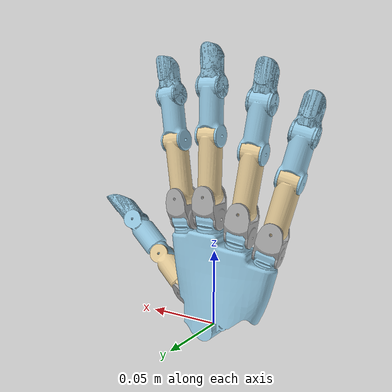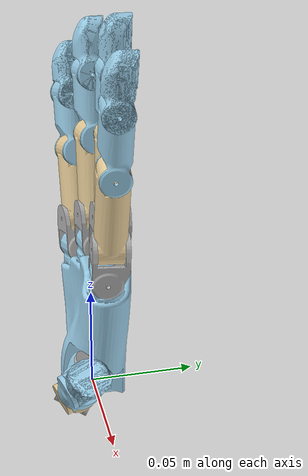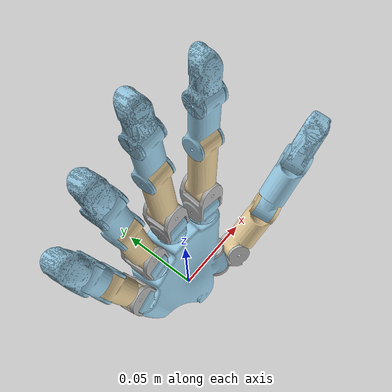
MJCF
<mujoco model="wujihand-right">
  <compiler angle="radian" meshdir="../meshes/right/" />

  <option jacobian="sparse" integrator="RK4" timestep="0.002" solver="Newton" iterations="50" tolerance="1e-10" /><default><joint armature="0.0002" damping="0.0" /></default><asset>
    <mesh name="r_wrist" content_type="model/stl" file="r_wrist.STL" />
    <mesh name="r_thumb_proximal" content_type="model/stl" file="r_thumb_proximal.STL" />
    <mesh name="r_thumb_proximal_abd" content_type="model/stl" file="r_thumb_proximal_abd.STL" />
    <mesh name="r_thumb_middle" content_type="model/stl" file="r_thumb_middle.STL" />
    <mesh name="r_thumb_distal" content_type="model/stl" file="r_thumb_distal.STL" />
    <mesh name="r_thumb_tip" content_type="model/stl" file="r_thumb_tip.STL" />
    <mesh name="r_index_finger_proximal" content_type="model/stl" file="r_index_finger_proximal.STL" />
    <mesh name="r_index_finger_proximal_abd" content_type="model/stl" file="r_index_finger_proximal_abd.STL" />
    <mesh name="r_index_finger_middle" content_type="model/stl" file="r_index_finger_middle.STL" />
    <mesh name="r_index_finger_distal" content_type="model/stl" file="r_index_finger_distal.STL" />
    <mesh name="r_index_finger_tip" content_type="model/stl" file="r_index_finger_tip.STL" />
    <mesh name="r_middle_finger_proximal" content_type="model/stl" file="r_middle_finger_proximal.STL" />
    <mesh name="r_middle_finger_proximal_abd" content_type="model/stl" file="r_middle_finger_proximal_abd.STL" />
    <mesh name="r_middle_finger_middle" content_type="model/stl" file="r_middle_finger_middle.STL" />
    <mesh name="r_middle_finger_distal" content_type="model/stl" file="r_middle_finger_distal.STL" />
    <mesh name="r_middle_finger_tip" content_type="model/stl" file="r_middle_finger_tip.STL" />
    <mesh name="r_ring_finger_proximal" content_type="model/stl" file="r_ring_finger_proximal.STL" />
    <mesh name="r_ring_finger_proximal_abd" content_type="model/stl" file="r_ring_finger_proximal_abd.STL" />
    <mesh name="r_ring_finger_middle" content_type="model/stl" file="r_ring_finger_middle.STL" />
    <mesh name="r_ring_finger_distal" content_type="model/stl" file="r_ring_finger_distal.STL" />
    <mesh name="r_ring_finger_tip" content_type="model/stl" file="r_ring_finger_tip.STL" />
    <mesh name="r_pinky_proximal" content_type="model/stl" file="r_pinky_proximal.STL" />
    <mesh name="r_pinky_proximal_abd" content_type="model/stl" file="r_pinky_proximal_abd.STL" />
    <mesh name="r_pinky_middle" content_type="model/stl" file="r_pinky_middle.STL" />
    <mesh name="r_pinky_distal" content_type="model/stl" file="r_pinky_distal.STL" />
    <mesh name="r_pinky_tip" content_type="model/stl" file="r_pinky_tip.STL" />
  </asset>

  <worldbody>
    <body name="r_base"><inertial pos="-0.00465005915391 0.00350274933556 0.0355133231883" mass="0.16914" quat="-0.02356349 0.71387536 0.69423322 -0.08869587" diaginertia="1.13579761e-04 7.26782042e-05 5.63605819e-05" /><geom quat="0 1 0 0" type="mesh" contype="0" conaffinity="0" group="1" density="0" rgba="0.6 0.8 0.9 1" mesh="r_wrist" />
    <geom quat="0 1 0 0" type="mesh" rgba="0.6 0.8 0.9 1" mesh="r_wrist" contype="1" conaffinity="1" />
    <body name="r_thumb_proximal" pos="0.0166603 -0.00812975 0.0170174" quat="0.0560941 0.641145 -0.286764 -0.709615">
      <inertial pos="0.000853657 -0.00195618 -0.00731809" quat="0.926535 0.017864 -0.0783162 -0.367534" mass="0.0075" diaginertia="5.71809e-07 5.3253e-07 4.31645e-07" />
      <joint name="r_thumb_cmc_flex" pos="0 0 0" axis="1 0 0" range="-1.187 1.291" actuatorfrcrange="-0.6 0.6" armature="0.0005" />
      <geom type="mesh" contype="0" conaffinity="0" group="1" density="0" rgba="0.7 0.7 0.7 1" mesh="r_thumb_proximal" />
      <geom type="mesh" rgba="0.7 0.7 0.7 1" mesh="r_thumb_proximal" contype="0" conaffinity="0" />
      <body name="r_thumb_proximal_abd" pos="0.000247879 -0.00053658 -0.0147535" quat="0.934711 0.0919299 0.342518 -0.0233669">
        <inertial pos="1.27934e-05 6.47331e-06 -0.0130544" quat="0.514054 -0.00124335 -0.00239204 0.857754" mass="0.0248" diaginertia="3.12125e-06 3.01494e-06 9.11991e-07" />
        <joint name="r_thumb_cmc_abd" pos="0 0 0" axis="0 1 0" range="-1.484 0.698" actuatorfrcrange="-0.6 0.6" armature="0.0005" />
        <geom type="mesh" contype="0" conaffinity="0" group="1" density="0" rgba="0.9 0.8 0.6 1" mesh="r_thumb_proximal_abd" />
        <geom type="mesh" rgba="0.9 0.8 0.6 1" mesh="r_thumb_proximal_abd" contype="2" conaffinity="2" />
        <body name="r_thumb_middle" pos="0 0 -0.0325" quat="0.957006 -0.0650473 0.0264059 0.281446">
          <inertial pos="9.38762e-06 0.00159564 -0.0142966" quat="0.697249 0.0378208 -0.040338 0.714693" mass="0.0165" diaginertia="2.27227e-06 2.22634e-06 6.14235e-07" />
          <joint name="r_thumb_mcp" pos="0 0 0" axis="1 0 0" range="-1.047 1.57" actuatorfrcrange="-0.3 0.3" />
          <geom type="mesh" contype="0" conaffinity="0" group="1" density="0" rgba="0.6 0.8 0.9 1" mesh="r_thumb_middle" />
          <geom type="mesh" rgba="0.6 0.8 0.9 1" mesh="r_thumb_middle" contype="1" conaffinity="1" />
          <body name="r_thumb_distal" pos="-5e-05 0.00385197 -0.0347874" quat="0.99848 0.0551119 0 0">
            <inertial pos="0.00011198 -0.0010295 -0.0108652" quat="0.983263 -0.0496604 0.00876169 0.175074" mass="0.0206" diaginertia="2.18898e-06 2.17637e-06 5.55099e-07" />
            <joint name="r_thumb_ip" pos="0 0 0" axis="1 0 0" range="-1.047 1.57" actuatorfrcrange="-0.3 0.3" />
            <geom type="mesh" contype="0" conaffinity="0" group="1" density="0" rgba="0.6 0.8 0.9 1" mesh="r_thumb_distal" />
            <geom type="mesh" rgba="0.6 0.8 0.9 1" mesh="r_thumb_distal" contype="1" conaffinity="1" />
            <geom pos="0 -0.000557449 -0.0276973" quat="1 0 0 0" type="mesh" contype="0" conaffinity="0" group="1" density="0" rgba="0.6 0.8 0.9 1" mesh="r_thumb_tip" />
            <geom pos="0 -0.000557449 -0.0276973" quat="1 0 0 0" type="mesh" rgba="0.6 0.8 0.9 1" mesh="r_thumb_tip" contype="1" conaffinity="1" />
          </body>
        </body>
      </body>
    </body>
    <body name="r_index_finger_proximal" pos="0.0203529 0.00336012 0.0706794" quat="0.00260714 0.997389 -0.0496759 -0.0523459">
      <inertial pos="1.80648e-09 -0.00198236 -0.00755147" quat="0.998683 -0.0513126 0 0" mass="0.0032" diaginertia="2.53706e-07 2.50651e-07 2.17493e-07" />
      <joint name="r_index_finger_mcp_flex" pos="0 0 0" axis="1 0 0" range="-1.047 1.57" actuatorfrcrange="-2 2" armature="0.0005" />
      <geom type="mesh" contype="0" conaffinity="0" group="1" density="0" rgba="0.7 0.7 0.7 1" mesh="r_index_finger_proximal" />
      <geom type="mesh" rgba="0.7 0.7 0.7 1" mesh="r_index_finger_proximal" contype="0" conaffinity="0" />
      <body name="r_index_finger_proximal_abd" pos="0 -0.00158514 -0.014463" quat="0.999912 -0.0132627 0 0">
        <inertial pos="8.04733e-08 7.30404e-07 -0.0187994" quat="0.983237 -1.60594e-05 3.84548e-06 0.18233" mass="0.033" diaginertia="6.82962e-06 6.82929e-06 8.90202e-07" />
        <joint name="r_index_finger_mcp_abd" pos="0 0 0" axis="0 1 0" range="-0.698 0.698" actuatorfrcrange="-0.2 0.2" />
        <geom type="mesh" contype="0" conaffinity="0" group="1" density="0" rgba="0.9 0.8 0.6 1" mesh="r_index_finger_proximal_abd" />
        <geom type="mesh" rgba="0.9 0.8 0.6 1" mesh="r_index_finger_proximal_abd" contype="2" conaffinity="2" />
        <body name="r_index_finger_middle" pos="0 0 -0.0376">
          <inertial pos="-5.07335e-08 -0.000247887 -0.0190348" quat="0.707235 0.0108069 -0.0107958 0.706814" mass="0.0165" diaginertia="1.92861e-06 1.87201e-06 5.07825e-07" />
          <joint name="r_index_finger_pip" pos="0 0 0" axis="1 0 0" range="-1.047 2.094" actuatorfrcrange="-0.3 0.3" />
          <geom type="mesh" contype="0" conaffinity="0" group="1" density="0" rgba="0.6 0.8 0.9 1" mesh="r_index_finger_middle" />
          <geom type="mesh" rgba="0.6 0.8 0.9 1" mesh="r_index_finger_middle" contype="1" conaffinity="1" />
          <body name="r_index_finger_distal" pos="0 0 -0.0295">
            <inertial pos="0.000309785 -0.00180539 -0.0114392" quat="0.719554 -0.0750724 0.0644902 0.687348" mass="0.01718" diaginertia="1.37358e-06 1.26339e-06 5.15141e-07" />
            <joint name="r_index_finger_dip" pos="0 0 0" axis="1 0 0" range="-1.047 1.57" actuatorfrcrange="-0.3 0.3" />
            <geom type="mesh" contype="0" conaffinity="0" group="1" density="0" rgba="0.6 0.8 0.9 1" mesh="r_index_finger_distal" />
            <geom type="mesh" rgba="0.6 0.8 0.9 1" mesh="r_index_finger_distal" contype="1" conaffinity="1" />
            <geom pos="0 -0.0016722 -0.025" quat="1 0 0 0" type="mesh" contype="0" conaffinity="0" group="1" density="0" rgba="0.6 0.8 0.9 1" mesh="r_index_finger_tip" />
            <geom pos="0 -0.0016722 -0.025" quat="1 0 0 0" type="mesh" rgba="0.6 0.8 0.9 1" mesh="r_index_finger_tip" contype="1" conaffinity="1" />
          </body>
        </body>
      </body>
    </body>
    <body name="r_middle_finger_proximal" pos="-0.00147348 0.00833994 0.0739026" quat="0.0172035 0.999612 -1.68266e-05 0.0219273">
      <inertial pos="1.83179e-09 -0.00178137 -0.00760139" quat="0.999275 -0.0380628 0 0" mass="0.0032" diaginertia="2.53706e-07 2.50651e-07 2.17493e-07" />
      <joint name="r_middle_finger_mcp_flex" pos="0 0 0" axis="1 0 0" range="-1.047 1.57" actuatorfrcrange="-2 2" armature="0.0005" />
      <geom type="mesh" contype="0" conaffinity="0" group="1" density="0" rgba="0.7 0.7 0.7 1" mesh="r_middle_finger_proximal" />
      <geom type="mesh" rgba="0.7 0.7 0.7 1" mesh="r_middle_finger_proximal" contype="0" conaffinity="0" />
      <body name="r_middle_finger_proximal_abd" pos="0 -0.00120098 -0.0145">
        <inertial pos="8.04733e-08 7.30404e-07 -0.0187994" quat="0.983237 -1.60594e-05 3.84548e-06 0.18233" mass="0.033" diaginertia="6.82962e-06 6.82929e-06 8.90202e-07" />
        <joint name="r_middle_finger_mcp_abd" pos="0 0 0" axis="0 1 0" range="-0.698 0.698" actuatorfrcrange="-0.2 0.2" />
        <geom type="mesh" contype="0" conaffinity="0" group="1" density="0" rgba="0.9 0.8 0.6 1" mesh="r_middle_finger_proximal_abd" />
        <geom type="mesh" rgba="0.9 0.8 0.6 1" mesh="r_middle_finger_proximal_abd" contype="2" conaffinity="2" />
        <body name="r_middle_finger_middle" pos="0 0 -0.0376">
          <inertial pos="-5.07335e-08 -0.000247887 -0.0190348" quat="0.707235 0.0108069 -0.0107958 0.706814" mass="0.0165" diaginertia="1.92861e-06 1.87201e-06 5.07825e-07" />
          <joint name="r_middle_finger_pip" pos="0 0 0" axis="1 0 0" range="-1.047 2.094" actuatorfrcrange="-0.3 0.3" />
          <geom type="mesh" contype="0" conaffinity="0" group="1" density="0" rgba="0.6 0.8 0.9 1" mesh="r_middle_finger_middle" />
          <geom type="mesh" rgba="0.6 0.8 0.9 1" mesh="r_middle_finger_middle" contype="1" conaffinity="1" />
          <body name="r_middle_finger_distal" pos="0 0 -0.0295" quat="0.999852 0.0171998 0 0">
            <inertial pos="0.000468757 -0.00226008 -0.0112071" quat="0.708852 -0.0912611 0.0741461 0.695487" mass="0.01718" diaginertia="1.42795e-06 1.2904e-06 5.05945e-07" />
            <joint name="r_middle_finger_dip" pos="0 0 0" axis="1 0 0" range="-1.047 1.57" actuatorfrcrange="-0.3 0.3" />
            <geom type="mesh" contype="0" conaffinity="0" group="1" density="0" rgba="0.6 0.8 0.9 1" mesh="r_middle_finger_distal" />
            <geom type="mesh" rgba="0.6 0.8 0.9 1" mesh="r_middle_finger_distal" contype="1" conaffinity="1" />
            <geom pos="0 -0.00253107 -0.0249277" quat="0.999852 -0.0171998 0 0" type="mesh" contype="0" conaffinity="0" group="1" density="0" rgba="0.6 0.8 0.9 1" mesh="r_middle_finger_tip" />
            <geom pos="0 -0.00253107 -0.0249277" quat="0.999852 -0.0171998 0 0" type="mesh" rgba="0.6 0.8 0.9 1" mesh="r_middle_finger_tip" contype="1" conaffinity="1" />
          </body>
        </body>
      </body>
    </body>
    <body name="r_ring_finger_proximal" pos="-0.0218789 0.0056256 0.0647141" quat="0.00668288 0.995597 0.0333901 0.0873356">
      <inertial pos="1.83179e-09 -0.00178137 -0.00760139" quat="0.999275 -0.0380628 0 0" mass="0.0032" diaginertia="2.53706e-07 2.50651e-07 2.17493e-07" />
      <joint name="r_ring_finger_mcp_flex" pos="0 0 0" axis="1 0 0" range="-1.047 1.57" actuatorfrcrange="-2 2" armature="0.0005" />
      <geom type="mesh" contype="0" conaffinity="0" group="1" density="0" rgba="0.7 0.7 0.7 1" mesh="r_ring_finger_proximal" />
      <geom type="mesh" rgba="0.7 0.7 0.7 1" mesh="r_ring_finger_proximal" contype="0" conaffinity="0" />
      <body name="r_ring_finger_proximal_abd" pos="0 -0.00120098 -0.0145">
        <inertial pos="8.04733e-08 7.30404e-07 -0.0187994" quat="0.983237 -1.60594e-05 3.84548e-06 0.18233" mass="0.033" diaginertia="6.82962e-06 6.82929e-06 8.90202e-07" />
        <joint name="r_ring_finger_mcp_abd" pos="0 0 0" axis="0 1 0" range="-0.698 0.698" actuatorfrcrange="-0.2 0.2" />
        <geom type="mesh" contype="0" conaffinity="0" group="1" density="0" rgba="0.9 0.8 0.6 1" mesh="r_ring_finger_proximal_abd" />
        <geom type="mesh" rgba="0.9 0.8 0.6 1" mesh="r_ring_finger_proximal_abd" contype="2" conaffinity="2" />
        <body name="r_ring_finger_middle" pos="0 0 -0.0376">
          <inertial pos="-5.07335e-08 -0.000247887 -0.0190348" quat="0.707235 0.0108069 -0.0107958 0.706814" mass="0.0165" diaginertia="1.92861e-06 1.87201e-06 5.07825e-07" />
          <joint name="r_ring_finger_pip" pos="0 0 0" axis="1 0 0" range="-1.047 2.094" actuatorfrcrange="-0.3 0.3" />
          <geom type="mesh" contype="0" conaffinity="0" group="1" density="0" rgba="0.6 0.8 0.9 1" mesh="r_ring_finger_middle" />
          <geom type="mesh" rgba="0.6 0.8 0.9 1" mesh="r_ring_finger_middle" contype="1" conaffinity="1" />
          <body name="r_ring_finger_distal" pos="0 0 -0.0295">
            <inertial pos="0.000309785 -0.00180539 -0.0114392" quat="0.719554 -0.0750724 0.0644902 0.687348" mass="0.01718" diaginertia="1.37358e-06 1.26339e-06 5.15141e-07" />
            <joint name="r_ring_finger_dip" pos="0 0 0" axis="1 0 0" range="-1.047 1.57" actuatorfrcrange="-0.3 0.3" />
            <geom type="mesh" contype="0" conaffinity="0" group="1" density="0" rgba="0.6 0.8 0.9 1" mesh="r_ring_finger_distal" />
            <geom type="mesh" rgba="0.6 0.8 0.9 1" mesh="r_ring_finger_distal" contype="1" conaffinity="1" />
            <geom pos="0 -0.0016722 -0.025" quat="1 0 0 0" type="mesh" contype="0" conaffinity="0" group="1" density="0" rgba="0.6 0.8 0.9 1" mesh="r_ring_finger_tip" />
            <geom pos="0 -0.0016722 -0.025" quat="1 0 0 0" type="mesh" rgba="0.6 0.8 0.9 1" mesh="r_ring_finger_tip" contype="1" conaffinity="1" />
          </body>
        </body>
      </body>
    </body>
    <body name="r_pinky_proximal" pos="-0.039145 0.00076138 0.054041" quat="0.00770747 0.987808 0.0654847 0.141027">
      <inertial pos="-2.12647e-07 -0.00178136 -0.00760145" quat="0.999275 -0.0380615 2.02149e-05 -7.69969e-07" mass="0.0032" diaginertia="2.537e-07 2.50649e-07 2.17493e-07" />
      <joint name="r_pinky_mcp_flex" pos="0 0 0" axis="1 0 0" range="-1.047 1.57" actuatorfrcrange="-2 2" armature="0.0005" />
      <geom type="mesh" contype="0" conaffinity="0" group="1" density="0" rgba="0.7 0.7 0.7 1" mesh="r_pinky_proximal" />
      <geom type="mesh" rgba="0.7 0.7 0.7 1" mesh="r_pinky_proximal" contype="0" conaffinity="0" />
      <body name="r_pinky_proximal_abd" pos="0 -0.001201 -0.0145" quat="1 0 0 1.81365e-05">
        <inertial pos="1.55645e-06 5.45321e-07 -0.016785" quat="0.762177 -7.77002e-06 3.02095e-05 0.647369" mass="0.033" diaginertia="5.84029e-06 5.83952e-06 8.87645e-07" />
        <joint name="r_pinky_mcp_abd" pos="0 0 0" axis="0 1 0" range="-0.698 0.698" actuatorfrcrange="-0.2 0.2" />
        <geom type="mesh" contype="0" conaffinity="0" group="1" density="0" rgba="0.9 0.8 0.6 1" mesh="r_pinky_proximal_abd" />
        <geom type="mesh" rgba="0.9 0.8 0.6 1" mesh="r_pinky_proximal_abd" contype="2" conaffinity="2" />
        <body name="r_pinky_middle" pos="0.0001 0 -0.0336" quat="1 0 0 -1.81365e-05">
          <inertial pos="-3.23236e-07 -0.000264491 -0.0178807" quat="0.707241 0.0112918 -0.0112863 0.706792" mass="0.0165" diaginertia="1.8076e-06 1.74345e-06 5.13353e-07" />
          <joint name="r_pinky_pip" pos="0 0 0" axis="1 0 0" range="-1.047 2.094" actuatorfrcrange="-0.3 0.3" />
          <geom type="mesh" contype="0" conaffinity="0" group="1" density="0" rgba="0.6 0.8 0.9 1" mesh="r_pinky_middle" />
          <geom type="mesh" rgba="0.6 0.8 0.9 1" mesh="r_pinky_middle" contype="1" conaffinity="1" />
          <body name="r_pinky_distal" pos="0 0 -0.0275">
            <inertial pos="0.00030939 -0.000750236 -0.0120757" quat="0.717842 -0.0379403 0.0367939 0.694197" mass="0.01718" diaginertia="1.25451e-06 1.12901e-06 5.30937e-07" />
            <joint name="r_pinky_dip" pos="0 0 0" axis="1 0 0" range="-1.047 1.57" actuatorfrcrange="-0.3 0.3" />
            <geom type="mesh" contype="0" conaffinity="0" group="1" density="0" rgba="0.6 0.8 0.9 1" mesh="r_pinky_distal" />
            <geom type="mesh" rgba="0.6 0.8 0.9 1" mesh="r_pinky_distal" contype="1" conaffinity="1" />
            <geom pos="0 -0.0016722 -0.025" quat="1 0 0 0" type="mesh" contype="0" conaffinity="0" group="1" density="0" rgba="0.6 0.8 0.9 1" mesh="r_pinky_tip" />
            <geom pos="0 -0.0016722 -0.025" quat="1 0 0 0" type="mesh" rgba="0.6 0.8 0.9 1" mesh="r_pinky_tip" contype="1" conaffinity="1" />
          </body>
        </body>
      </body>
    </body>
  </body></worldbody>
<actuator>
    <position name="right_finger1_joint1_actuator" joint="r_thumb_cmc_flex" kp="0.40844710645048043" kv="0.020882010257063675" ctrlrange="-1.187 1.291" forcerange="-0.6 0.6" />
    <position name="right_finger1_joint2_actuator" joint="r_thumb_cmc_abd" kp="0.6858601063643346" kv="0.030610939996373314" ctrlrange="-1.484 0.698" forcerange="-0.6 0.6" />
    <position name="right_finger1_joint3_actuator" joint="r_thumb_mcp" kp="0.2391112196099482" kv="0.010181475050560962" ctrlrange="-1.047 1.57" forcerange="-0.3 0.3" />
    <position name="right_finger1_joint4_actuator" joint="r_thumb_ip" kp="0.20736128319711747" kv="0.00909698844675045" ctrlrange="-1.047 1.57" forcerange="-0.3 0.3" />
    <position name="right_finger2_joint1_actuator" joint="r_index_finger_mcp_flex" kp="0.37352218155860073" kv="0.01882274330029718" ctrlrange="-1.047 1.57" forcerange="-2 2" />
    <position name="right_finger2_joint2_actuator" joint="r_index_finger_mcp_abd" kp="0.45592448909027794" kv="0.019798167597016643" ctrlrange="-0.698 0.698" forcerange="-0.2 0.2" />
    <position name="right_finger2_joint3_actuator" joint="r_index_finger_pip" kp="0.24368366649522863" kv="0.010477031953162727" ctrlrange="-1.047 2.094" forcerange="-0.3 0.3" />
    <position name="right_finger2_joint4_actuator" joint="r_index_finger_dip" kp="0.18026971340925335" kv="0.008240212147903584" ctrlrange="-1.047 1.57" forcerange="-0.3 0.3" />
    <position name="right_finger3_joint1_actuator" joint="r_middle_finger_mcp_flex" kp="0.3687093483646485" kv="0.01848622487024593" ctrlrange="-1.047 1.57" forcerange="-2 2" />
    <position name="right_finger3_joint2_actuator" joint="r_middle_finger_mcp_abd" kp="0.4164253443634641" kv="0.018032947229953678" ctrlrange="-0.698 0.698" forcerange="-0.2 0.2" />
    <position name="right_finger3_joint3_actuator" joint="r_middle_finger_pip" kp="0.22218607502059182" kv="0.009592200014076666" ctrlrange="-1.047 2.094" forcerange="-0.3 0.3" />
    <position name="right_finger3_joint4_actuator" joint="r_middle_finger_dip" kp="0.19427606072023446" kv="0.009152994605972402" ctrlrange="-1.047 1.57" forcerange="-0.3 0.3" />
    <position name="right_finger4_joint1_actuator" joint="r_ring_finger_mcp_flex" kp="0.35718151495111794" kv="0.018376606800780005" ctrlrange="-1.047 1.57" forcerange="-2 2" />
    <position name="right_finger4_joint2_actuator" joint="r_ring_finger_mcp_abd" kp="0.42977315313086895" kv="0.01867700966212433" ctrlrange="-0.698 0.698" forcerange="-0.2 0.2" />
    <position name="right_finger4_joint3_actuator" joint="r_ring_finger_pip" kp="0.24930151196247122" kv="0.01059512121009555" ctrlrange="-1.047 2.094" forcerange="-0.3 0.3" />
    <position name="right_finger4_joint4_actuator" joint="r_ring_finger_dip" kp="0.2285032688178066" kv="0.009917602877441107" ctrlrange="-1.047 1.57" forcerange="-0.3 0.3" />
    <position name="right_finger5_joint1_actuator" joint="r_pinky_mcp_flex" kp="0.3655325975433942" kv="0.018616960278988272" ctrlrange="-1.047 1.57" forcerange="-2 2" />
    <position name="right_finger5_joint2_actuator" joint="r_pinky_mcp_abd" kp="0.41393113081120425" kv="0.018732177029667153" ctrlrange="-0.698 0.698" forcerange="-0.2 0.2" />
    <position name="right_finger5_joint3_actuator" joint="r_pinky_pip" kp="0.22729367621965954" kv="0.00951005441616486" ctrlrange="-1.047 2.094" forcerange="-0.3 0.3" />
    <position name="right_finger5_joint4_actuator" joint="r_pinky_dip" kp="0.1964723550341816" kv="0.009017295241756363" ctrlrange="-1.047 1.57" forcerange="-0.3 0.3" />
  </actuator>
</mujoco>
